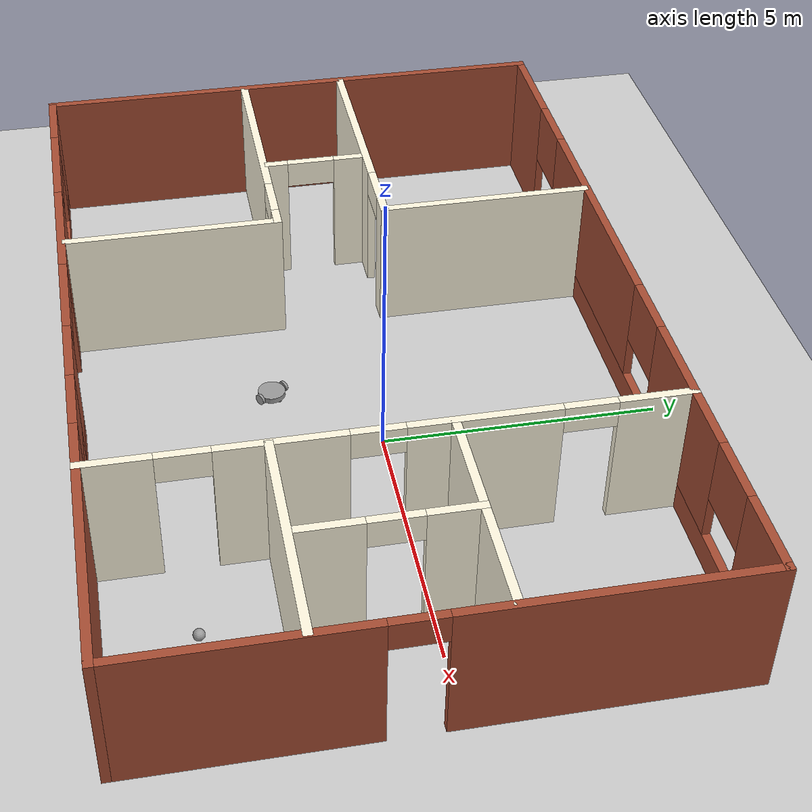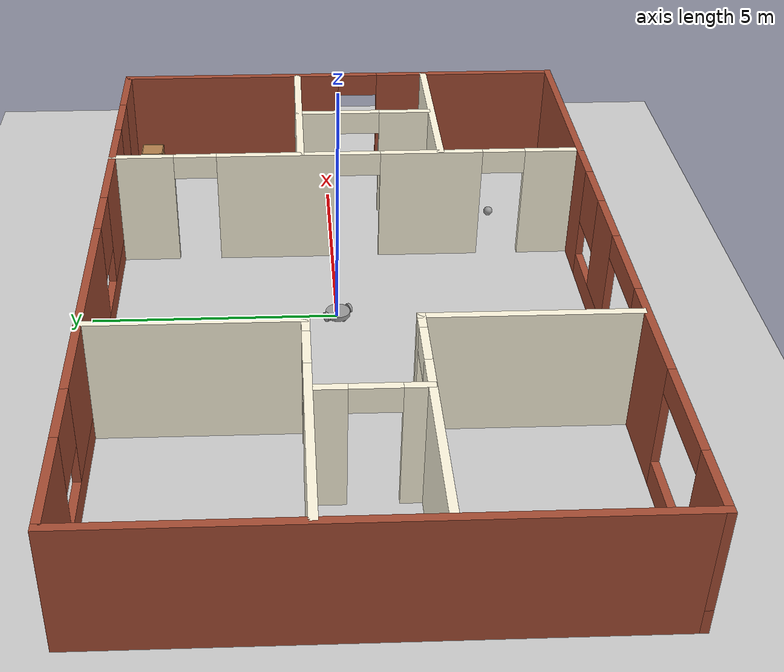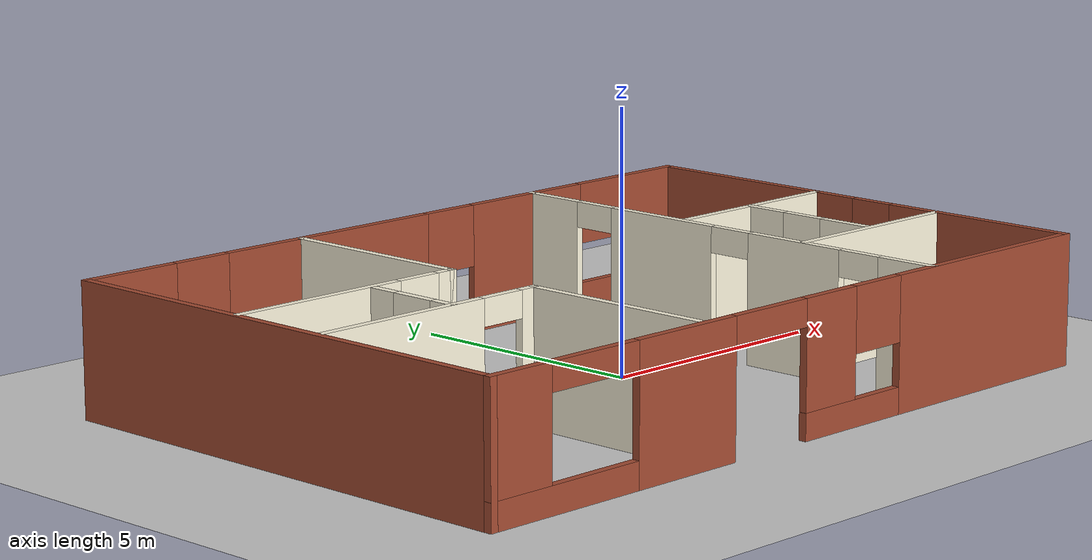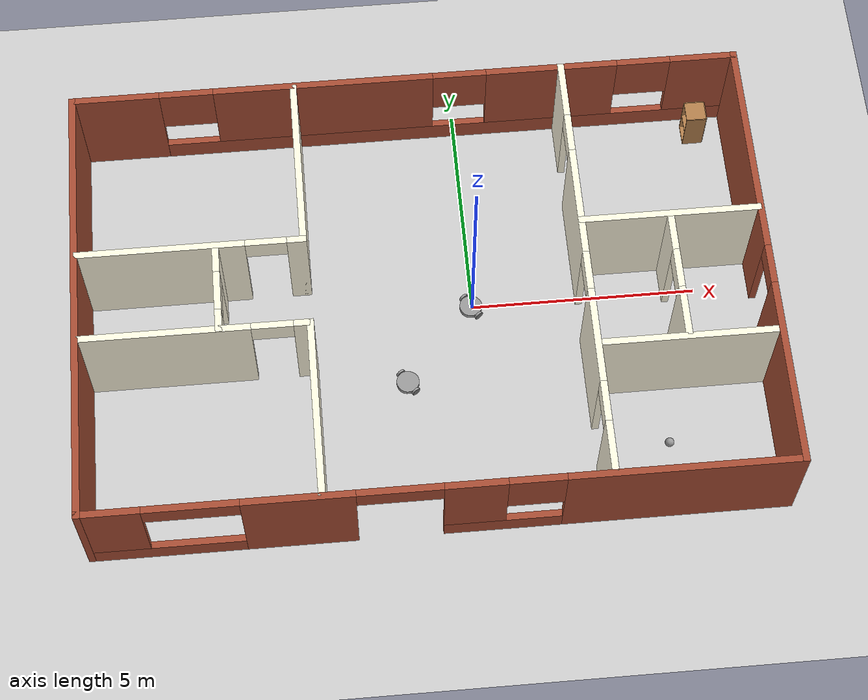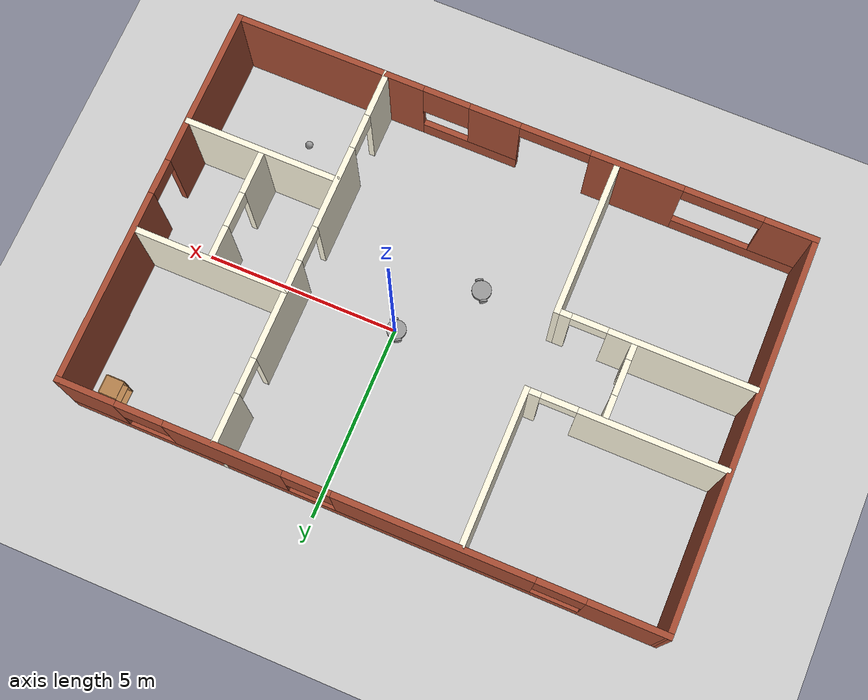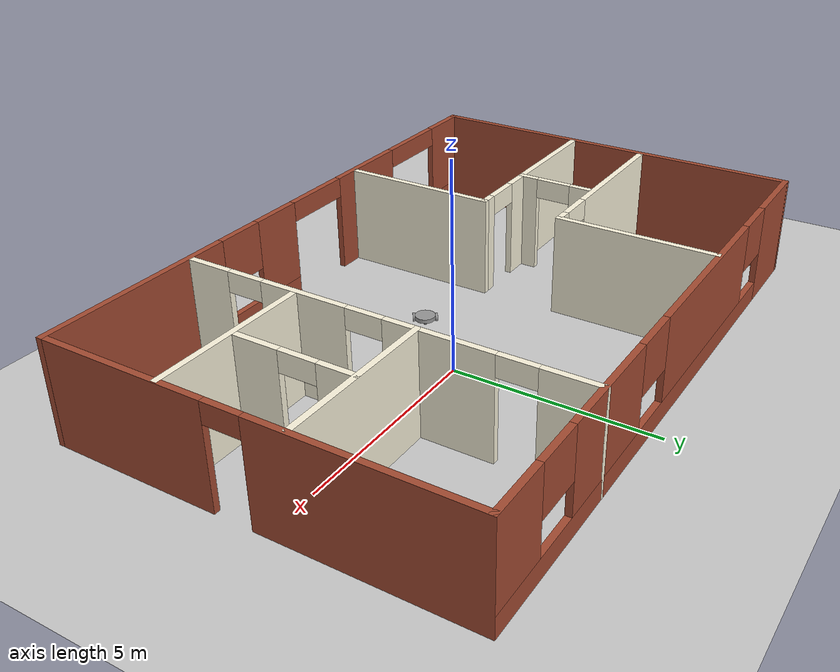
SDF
<sdf version="1.6">
 <world name="default">
  <plugin name="hello" filename="libhello.so"/>
  <light name="sun" type="directional">
   <pose>0 0 10 0 -0 0</pose>
   <diffuse>0.8 0.8 0.8 1</diffuse>
   <specular>0.2 0.2 0.2 1</specular>
   <attenuation>
    <range>1000</range>
    <constant>0.9</constant>
    <linear>0.01</linear>
    <quadratic>0.001</quadratic>
   </attenuation>
   <direction>-0.5 0.1 -0.9</direction>
  </light>
  <model name="ground_plane">
   <static>1</static>
   <link name="link">
    <collision name="collision">
     <geometry><plane><normal>0 0 1</normal><size>100 100</size></plane></geometry>
     <surface>
      <contact><collide_bitmask>65535</collide_bitmask></contact>
      <friction><ode><mu>100</mu><mu2>50</mu2></ode></friction>
     </surface>
    </collision>
    <visual name="visual">
     <cast_shadows>0</cast_shadows>
     <geometry><plane><normal>0 0 1</normal><size>100 100</size></plane></geometry>
     <material>
      <script><uri>file://media/materials/scripts/gazebo.material</uri><name>Gazebo/Grey</name></script>
     </material>
    </visual>
   </link>
  </model>
  <gravity>0 0 -9.8</gravity>
  <magnetic_field>6e-06 2.3e-05 -4.2e-05</magnetic_field>
  <atmosphere type="adiabatic"/>
  <physics name="default_physics" default="0" type="ode">
   <max_step_size>0.001</max_step_size>
   <real_time_factor>1</real_time_factor>
   <real_time_update_rate>1000</real_time_update_rate>
  </physics>
  <scene><ambient>0.4 0.4 0.4 1</ambient><background>0.7 0.7 0.7 1</background><shadows>1</shadows></scene>
  <spherical_coordinates>
   <surface_model>EARTH_WGS84</surface_model>
   <latitude_deg>0</latitude_deg>
   <longitude_deg>0</longitude_deg>
   <elevation>0</elevation>
   <heading_deg>0</heading_deg>
  </spherical_coordinates>
  <model name="MyHouse">
   <pose>-1.12525 -0.31003 0 0 -0 0</pose>
   <link name="Wall_0">
    <pose>0 4.925 0 0 -0 0</pose>
    <visual name="Wall_0_Visual_0">
     <pose>-6.49606 0 1.25 0 -0 0</pose>
     <geometry><box><size>2.00787 0.15 2.5</size></box></geometry>
     <material>
      <script><uri>file://media/materials/scripts/gazebo.material</uri><name>Gazebo/Bricks</name></script>
      <ambient>1 1 1 1</ambient>
     </material>
     <meta><layer>0</layer></meta>
    </visual>
    <collision name="Wall_0_Collision_0">
     <geometry><box><size>2.00787 0.15 2.5</size></box></geometry>
     <pose>-6.49606 0 1.25 0 -0 0</pose>
    </collision>
    <visual name="Wall_0_Visual_1">
     <pose>1.00394 0 0.25 0 -0 0</pose>
     <geometry><box><size>12.9921 0.15 0.5</size></box></geometry>
     <material>
      <script><uri>file://media/materials/scripts/gazebo.material</uri><name>Gazebo/Bricks</name></script>
      <ambient>1 1 1 1</ambient>
     </material>
     <meta><layer>0</layer></meta>
    </visual>
    <collision name="Wall_0_Collision_1">
     <geometry><box><size>12.9921 0.15 0.5</size></box></geometry>
     <pose>1.00394 0 0.25 0 -0 0</pose>
    </collision>
    <visual name="Wall_0_Visual_2">
     <pose>-1.83158 0 1.5 0 -0 0</pose>
     <geometry><box><size>4.9211 0.15 2</size></box></geometry>
     <material>
      <script><uri>file://media/materials/scripts/gazebo.material</uri><name>Gazebo/Bricks</name></script>
      <ambient>1 1 1 1</ambient>
     </material>
     <meta><layer>0</layer></meta>
    </visual>
    <collision name="Wall_0_Collision_2">
     <geometry><box><size>4.9211 0.15 2</size></box></geometry>
     <pose>-1.83158 0 1.5 0 -0 0</pose>
    </collision>
    <visual name="Wall_0_Visual_3">
     <pose>3.30452 0 1.5 0 -0 0</pose>
     <geometry><box><size>2.95109 0.15 2</size></box></geometry>
     <material>
      <script><uri>file://media/materials/scripts/gazebo.material</uri><name>Gazebo/Bricks</name></script>
      <ambient>1 1 1 1</ambient>
     </material>
     <meta><layer>0</layer></meta>
    </visual>
    <collision name="Wall_0_Collision_3">
     <geometry><box><size>2.95109 0.15 2</size></box></geometry>
     <pose>3.30452 0 1.5 0 -0 0</pose>
    </collision>
    <visual name="Wall_0_Visual_4">
     <pose>6.74003 0 1.5 0 -0 0</pose>
     <geometry><box><size>1.51993 0.15 2</size></box></geometry>
     <material>
      <script><uri>file://media/materials/scripts/gazebo.material</uri><name>Gazebo/Bricks</name></script>
      <ambient>1 1 1 1</ambient>
     </material>
     <meta><layer>0</layer></meta>
    </visual>
    <collision name="Wall_0_Collision_4">
     <geometry><box><size>1.51993 0.15 2</size></box></geometry>
     <pose>6.74003 0 1.5 0 -0 0</pose>
    </collision>
    <visual name="Wall_0_Visual_5">
     <pose>-4.89213 0 1.9 0 -0 0</pose>
     <geometry><box><size>1.2 0.15 1.2</size></box></geometry>
     <material>
      <script><uri>file://media/materials/scripts/gazebo.material</uri><name>Gazebo/Bricks</name></script>
      <ambient>1 1 1 1</ambient>
     </material>
     <meta><layer>0</layer></meta>
    </visual>
    <collision name="Wall_0_Collision_5">
     <geometry><box><size>1.2 0.15 1.2</size></box></geometry>
     <pose>-4.89213 0 1.9 0 -0 0</pose>
    </collision>
    <visual name="Wall_0_Visual_6">
     <pose>1.22898 0 1.9 0 -0 0</pose>
     <geometry><box><size>1.2 0.15 1.2</size></box></geometry>
     <material>
      <script><uri>file://media/materials/scripts/gazebo.material</uri><name>Gazebo/Bricks</name></script>
      <ambient>1 1 1 1</ambient>
     </material>
     <meta><layer>0</layer></meta>
    </visual>
    <collision name="Wall_0_Collision_6">
     <geometry><box><size>1.2 0.15 1.2</size></box></geometry>
     <pose>1.22898 0 1.9 0 -0 0</pose>
    </collision>
    <visual name="Wall_0_Visual_7">
     <pose>5.38007 0 1.9 0 -0 0</pose>
     <geometry><box><size>1.2 0.15 1.2</size></box></geometry>
     <material>
      <script><uri>file://media/materials/scripts/gazebo.material</uri><name>Gazebo/Bricks</name></script>
      <ambient>1 1 1 1</ambient>
     </material>
     <meta><layer>0</layer></meta>
    </visual>
    <collision name="Wall_0_Collision_7">
     <geometry><box><size>1.2 0.15 1.2</size></box></geometry>
     <pose>5.38007 0 1.9 0 -0 0</pose>
    </collision>
   </link>
   <link name="Wall_1">
    <pose>7.425 0 0 0 0 -1.5708</pose>
    <visual name="Wall_1_Visual_0">
     <pose>-2.51391 0 1.25 0 -0 0</pose>
     <geometry><box><size>4.97217 0.15 2.5</size></box></geometry>
     <material>
      <script><uri>file://media/materials/scripts/gazebo.material</uri><name>Gazebo/Bricks</name></script>
      <ambient>1 1 1 1</ambient>
     </material>
     <meta><layer>0</layer></meta>
    </visual>
    <collision name="Wall_1_Collision_0">
     <geometry><box><size>4.97217 0.15 2.5</size></box></geometry>
     <pose>-2.51391 0 1.25 0 -0 0</pose>
    </collision>
    <visual name="Wall_1_Visual_1">
     <pose>2.93609 0 1.25 0 -0 0</pose>
     <geometry><box><size>4.12783 0.15 2.5</size></box></geometry>
     <material>
      <script><uri>file://media/materials/scripts/gazebo.material</uri><name>Gazebo/Bricks</name></script>
      <ambient>1 1 1 1</ambient>
     </material>
     <meta><layer>0</layer></meta>
    </visual>
    <collision name="Wall_1_Collision_1">
     <geometry><box><size>4.12783 0.15 2.5</size></box></geometry>
     <pose>2.93609 0 1.25 0 -0 0</pose>
    </collision>
    <visual name="Wall_1_Visual_2">
     <pose>0.422172 0 2.25 0 -0 0</pose>
     <geometry><box><size>0.9 0.15 0.5</size></box></geometry>
     <material>
      <script><uri>file://media/materials/scripts/gazebo.material</uri><name>Gazebo/Bricks</name></script>
      <ambient>1 1 1 1</ambient>
     </material>
     <meta><layer>0</layer></meta>
    </visual>
    <collision name="Wall_1_Collision_2">
     <geometry><box><size>0.9 0.15 0.5</size></box></geometry>
     <pose>0.422172 0 2.25 0 -0 0</pose>
    </collision>
   </link>
   <link name="Wall_15">
    <pose>-4.39963 -0.049306 0 0 0 -1.5708</pose>
    <visual name="Wall_15_Visual_0">
     <pose>-0.714461 0 1.25 0 -0 0</pose>
     <geometry><box><size>0.571078 0.15 2.5</size></box></geometry>
     <material>
      <script><uri>file://media/materials/scripts/gazebo.material</uri><name>Gazebo/Grey</name></script>
      <ambient>1 0.972549 0.878431 1</ambient>
     </material>
     <meta><layer>0</layer></meta>
    </visual>
    <collision name="Wall_15_Collision_0">
     <geometry><box><size>0.571078 0.15 2.5</size></box></geometry>
     <pose>-0.714461 0 1.25 0 -0 0</pose>
    </collision>
    <visual name="Wall_15_Visual_1">
     <pose>0.735539 0 1.25 0 -0 0</pose>
     <geometry><box><size>0.528922 0.15 2.5</size></box></geometry>
     <material>
      <script><uri>file://media/materials/scripts/gazebo.material</uri><name>Gazebo/Grey</name></script>
      <ambient>1 0.972549 0.878431 1</ambient>
     </material>
     <meta><layer>0</layer></meta>
    </visual>
    <collision name="Wall_15_Collision_1">
     <geometry><box><size>0.528922 0.15 2.5</size></box></geometry>
     <pose>0.735539 0 1.25 0 -0 0</pose>
    </collision>
    <visual name="Wall_15_Visual_2">
     <pose>0.021078 0 2.25 0 -0 0</pose>
     <geometry><box><size>0.9 0.15 0.5</size></box></geometry>
     <material>
      <script><uri>file://media/materials/scripts/gazebo.material</uri><name>Gazebo/Grey</name></script>
      <ambient>1 0.972549 0.878431 1</ambient>
     </material>
     <meta><layer>0</layer></meta>
    </visual>
    <collision name="Wall_15_Collision_2">
     <geometry><box><size>0.9 0.15 0.5</size></box></geometry>
     <pose>0.021078 0 2.25 0 -0 0</pose>
    </collision>
   </link>
   <link name="Wall_17">
    <pose>3.51559 0 0 0 0 -1.5708</pose>
    <visual name="Wall_17_Visual_0">
     <pose>-4.32562 0 1.25 0 -0 0</pose>
     <geometry><box><size>1.34876 0.15 2.5</size></box></geometry>
     <material>
      <script><uri>file://media/materials/scripts/gazebo.material</uri><name>Gazebo/Grey</name></script>
      <ambient>1 0.972549 0.878431 1</ambient>
     </material>
     <meta><layer>0</layer></meta>
    </visual>
    <collision name="Wall_17_Collision_0">
     <geometry><box><size>1.34876 0.15 2.5</size></box></geometry>
     <pose>-4.32562 0 1.25 0 -0 0</pose>
    </collision>
    <visual name="Wall_17_Visual_1">
     <pose>-1.47748 0 1.25 0 -0 0</pose>
     <geometry><box><size>2.54752 0.15 2.5</size></box></geometry>
     <material>
      <script><uri>file://media/materials/scripts/gazebo.material</uri><name>Gazebo/Grey</name></script>
      <ambient>1 0.972549 0.878431 1</ambient>
     </material>
     <meta><layer>0</layer></meta>
    </visual>
    <collision name="Wall_17_Collision_1">
     <geometry><box><size>2.54752 0.15 2.5</size></box></geometry>
     <pose>-1.47748 0 1.25 0 -0 0</pose>
    </collision>
    <visual name="Wall_17_Visual_2">
     <pose>1.77655 0 1.25 0 -0 0</pose>
     <geometry><box><size>2.16055 0.15 2.5</size></box></geometry>
     <material>
      <script><uri>file://media/materials/scripts/gazebo.material</uri><name>Gazebo/Grey</name></script>
      <ambient>1 0.972549 0.878431 1</ambient>
     </material>
     <meta><layer>0</layer></meta>
    </visual>
    <collision name="Wall_17_Collision_2">
     <geometry><box><size>2.16055 0.15 2.5</size></box></geometry>
     <pose>1.77655 0 1.25 0 -0 0</pose>
    </collision>
    <visual name="Wall_17_Visual_3">
     <pose>4.37842 0 1.25 0 -0 0</pose>
     <geometry><box><size>1.24317 0.15 2.5</size></box></geometry>
     <material>
      <script><uri>file://media/materials/scripts/gazebo.material</uri><name>Gazebo/Grey</name></script>
      <ambient>1 0.972549 0.878431 1</ambient>
     </material>
     <meta><layer>0</layer></meta>
    </visual>
    <collision name="Wall_17_Collision_3">
     <geometry><box><size>1.24317 0.15 2.5</size></box></geometry>
     <pose>4.37842 0 1.25 0 -0 0</pose>
    </collision>
    <visual name="Wall_17_Visual_4">
     <pose>-3.20124 0 2.25 0 -0 0</pose>
     <geometry><box><size>0.9 0.15 0.5</size></box></geometry>
     <material>
      <script><uri>file://media/materials/scripts/gazebo.material</uri><name>Gazebo/Grey</name></script>
      <ambient>1 0.972549 0.878431 1</ambient>
     </material>
     <meta><layer>0</layer></meta>
    </visual>
    <collision name="Wall_17_Collision_4">
     <geometry><box><size>0.9 0.15 0.5</size></box></geometry>
     <pose>-3.20124 0 2.25 0 -0 0</pose>
    </collision>
    <visual name="Wall_17_Visual_5">
     <pose>0.246278 0 2.25 0 -0 0</pose>
     <geometry><box><size>0.9 0.15 0.5</size></box></geometry>
     <material>
      <script><uri>file://media/materials/scripts/gazebo.material</uri><name>Gazebo/Grey</name></script>
      <ambient>1 0.972549 0.878431 1</ambient>
     </material>
     <meta><layer>0</layer></meta>
    </visual>
    <collision name="Wall_17_Collision_5">
     <geometry><box><size>0.9 0.15 0.5</size></box></geometry>
     <pose>0.246278 0 2.25 0 -0 0</pose>
    </collision>
    <visual name="Wall_17_Visual_6">
     <pose>3.30683 0 2.25 0 -0 0</pose>
     <geometry><box><size>0.9 0.15 0.5</size></box></geometry>
     <material>
      <script><uri>file://media/materials/scripts/gazebo.material</uri><name>Gazebo/Grey</name></script>
      <ambient>1 0.972549 0.878431 1</ambient>
     </material>
     <meta><layer>0</layer></meta>
    </visual>
    <collision name="Wall_17_Collision_6">
     <geometry><box><size>0.9 0.15 0.5</size></box></geometry>
     <pose>3.30683 0 2.25 0 -0 0</pose>
    </collision>
   </link>
   <link name="Wall_2">
    <pose>0 -4.925 0 0 -0 3.14159</pose>
    <visual name="Wall_2_Visual_0">
     <pose>-5.01628 0 1.25 0 -0 0</pose>
     <geometry><box><size>4.96745 0.15 2.5</size></box></geometry>
     <material>
      <script><uri>file://media/materials/scripts/gazebo.material</uri><name>Gazebo/Bricks</name></script>
      <ambient>1 1 1 1</ambient>
     </material>
     <meta><layer>0</layer></meta>
    </visual>
    <collision name="Wall_2_Collision_0">
     <geometry><box><size>4.96745 0.15 2.5</size></box></geometry>
     <pose>-5.01628 0 1.25 0 -0 0</pose>
    </collision>
    <visual name="Wall_2_Visual_1">
     <pose>2.96025 0 1.25 0 -0 0</pose>
     <geometry><box><size>2.35701 0.15 2.5</size></box></geometry>
     <material>
      <script><uri>file://media/materials/scripts/gazebo.material</uri><name>Gazebo/Bricks</name></script>
      <ambient>1 1 1 1</ambient>
     </material>
     <meta><layer>0</layer></meta>
    </visual>
    <collision name="Wall_2_Collision_1">
     <geometry><box><size>2.35701 0.15 2.5</size></box></geometry>
     <pose>2.96025 0 1.25 0 -0 0</pose>
    </collision>
    <visual name="Wall_2_Visual_2">
     <pose>-1.2754 0 0.25 0 -0 0</pose>
     <geometry><box><size>2.5143 0.15 0.5</size></box></geometry>
     <material>
      <script><uri>file://media/materials/scripts/gazebo.material</uri><name>Gazebo/Bricks</name></script>
      <ambient>1 1 1 1</ambient>
     </material>
     <meta><layer>0</layer></meta>
    </visual>
    <collision name="Wall_2_Collision_2">
     <geometry><box><size>2.5143 0.15 0.5</size></box></geometry>
     <pose>-1.2754 0 0.25 0 -0 0</pose>
    </collision>
    <visual name="Wall_2_Visual_3">
     <pose>5.81938 0 0.25 0 -0 0</pose>
     <geometry><box><size>3.36124 0.15 0.5</size></box></geometry>
     <material>
      <script><uri>file://media/materials/scripts/gazebo.material</uri><name>Gazebo/Bricks</name></script>
      <ambient>1 1 1 1</ambient>
     </material>
     <meta><layer>0</layer></meta>
    </visual>
    <collision name="Wall_2_Collision_3">
     <geometry><box><size>3.36124 0.15 0.5</size></box></geometry>
     <pose>5.81938 0 0.25 0 -0 0</pose>
    </collision>
    <visual name="Wall_2_Visual_4">
     <pose>6.81938 0 1.5 0 -0 0</pose>
     <geometry><box><size>1.36125 0.15 2</size></box></geometry>
     <material>
      <script><uri>file://media/materials/scripts/gazebo.material</uri><name>Gazebo/Bricks</name></script>
      <ambient>1 1 1 1</ambient>
     </material>
     <meta><layer>0</layer></meta>
    </visual>
    <collision name="Wall_2_Collision_4">
     <geometry><box><size>1.36125 0.15 2</size></box></geometry>
     <pose>6.81938 0 1.5 0 -0 0</pose>
    </collision>
    <visual name="Wall_2_Visual_5">
     <pose>-0.6754 0 1.5 0 -0 0</pose>
     <geometry><box><size>1.3143 0.15 2</size></box></geometry>
     <material>
      <script><uri>file://media/materials/scripts/gazebo.material</uri><name>Gazebo/Bricks</name></script>
      <ambient>1 1 1 1</ambient>
     </material>
     <meta><layer>0</layer></meta>
    </visual>
    <collision name="Wall_2_Collision_5">
     <geometry><box><size>1.3143 0.15 2</size></box></geometry>
     <pose>-0.6754 0 1.5 0 -0 0</pose>
    </collision>
    <visual name="Wall_2_Visual_6">
     <pose>-0.6754 0 1.5 0 -0 0</pose>
     <geometry><box><size>1.3143 0.15 2</size></box></geometry>
     <material>
      <script><uri>file://media/materials/scripts/gazebo.material</uri><name>Gazebo/Bricks</name></script>
      <ambient>1 1 1 1</ambient>
     </material>
     <meta><layer>0</layer></meta>
    </visual>
    <collision name="Wall_2_Collision_6">
     <geometry><box><size>1.3143 0.15 2</size></box></geometry>
     <pose>-0.6754 0 1.5 0 -0 0</pose>
    </collision>
    <visual name="Wall_2_Visual_7">
     <pose>-1.93255 0 1.9 0 -0 0</pose>
     <geometry><box><size>1.2 0.15 1.2</size></box></geometry>
     <material>
      <script><uri>file://media/materials/scripts/gazebo.material</uri><name>Gazebo/Bricks</name></script>
      <ambient>1 1 1 1</ambient>
     </material>
     <meta><layer>0</layer></meta>
    </visual>
    <collision name="Wall_2_Collision_7">
     <geometry><box><size>1.2 0.15 1.2</size></box></geometry>
     <pose>-1.93255 0 1.9 0 -0 0</pose>
    </collision>
    <visual name="Wall_2_Visual_8">
     <pose>5.13875 0 2.25 0 -0 0</pose>
     <geometry><box><size>2 0.15 0.5</size></box></geometry>
     <material>
      <script><uri>file://media/materials/scripts/gazebo.material</uri><name>Gazebo/Bricks</name></script>
      <ambient>1 1 1 1</ambient>
     </material>
     <meta><layer>0</layer></meta>
    </visual>
    <collision name="Wall_2_Collision_8">
     <geometry><box><size>2 0.15 0.5</size></box></geometry>
     <pose>5.13875 0 2.25 0 -0 0</pose>
    </collision>
    <visual name="Wall_2_Visual_9">
     <pose>0.88175 0 2.25 0 -0 0</pose>
     <geometry><box><size>1.8 0.15 0.5</size></box></geometry>
     <material>
      <script><uri>file://media/materials/scripts/gazebo.material</uri><name>Gazebo/Bricks</name></script>
      <ambient>1 1 1 1</ambient>
     </material>
     <meta><layer>0</layer></meta>
    </visual>
    <collision name="Wall_2_Collision_9">
     <geometry><box><size>1.8 0.15 0.5</size></box></geometry>
     <pose>0.88175 0 2.25 0 -0 0</pose>
    </collision>
    <visual name="Wall_2_Visual_10">
     <pose>0.88175 0 2.25 0 -0 0</pose>
     <geometry><box><size>1.8 0.15 0.5</size></box></geometry>
     <material>
      <script><uri>file://media/materials/scripts/gazebo.material</uri><name>Gazebo/Bricks</name></script>
      <ambient>1 1 1 1</ambient>
     </material>
     <meta><layer>0</layer></meta>
    </visual>
    <collision name="Wall_2_Collision_10">
     <geometry><box><size>1.8 0.15 0.5</size></box></geometry>
     <pose>0.88175 0 2.25 0 -0 0</pose>
    </collision>
   </link>
   <link name="Wall_21">
    <collision name="Wall_21_Collision">
     <geometry><box><size>4 0.15 2.5</size></box></geometry>
     <pose>0 0 1.25 0 -0 0</pose>
    </collision>
    <visual name="Wall_21_Visual">
     <pose>0 0 1.25 0 -0 0</pose>
     <geometry><box><size>4 0.15 2.5</size></box></geometry>
     <material>
      <script><uri>file://media/materials/scripts/gazebo.material</uri><name>Gazebo/Grey</name></script>
      <ambient>1 0.972549 0.878431 1</ambient>
     </material>
     <meta><layer>0</layer></meta>
    </visual>
    <pose>5.4406 0.984979 0 0 -0 0</pose>
   </link>
   <link name="Wall_24">
    <collision name="Wall_24_Collision">
     <geometry><box><size>4 0.15 2.5</size></box></geometry>
     <pose>0 0 1.25 0 -0 0</pose>
    </collision>
    <visual name="Wall_24_Visual">
     <pose>0 0 1.25 0 -0 0</pose>
     <geometry><box><size>4 0.15 2.5</size></box></geometry>
     <material>
      <script><uri>file://media/materials/scripts/gazebo.material</uri><name>Gazebo/Grey</name></script>
      <ambient>1 0.972549 0.878431 1</ambient>
     </material>
     <meta><layer>0</layer></meta>
    </visual>
    <pose>5.47577 -1.97004 0 0 -0 0</pose>
   </link>
   <link name="Wall_26">
    <pose>5.45043 -0.440021 0 0 0 -1.5708</pose>
    <visual name="Wall_26_Visual_0">
     <pose>-1.0191 0 1.25 0 -0 0</pose>
     <geometry><box><size>0.961793 0.15 2.5</size></box></geometry>
     <material>
      <script><uri>file://media/materials/scripts/gazebo.material</uri><name>Gazebo/Grey</name></script>
      <ambient>1 0.972549 0.878431 1</ambient>
     </material>
     <meta><layer>0</layer></meta>
    </visual>
    <collision name="Wall_26_Collision_0">
     <geometry><box><size>0.961793 0.15 2.5</size></box></geometry>
     <pose>-1.0191 0 1.25 0 -0 0</pose>
    </collision>
    <visual name="Wall_26_Visual_1">
     <pose>0.930896 0 1.25 0 -0 0</pose>
     <geometry><box><size>1.13821 0.15 2.5</size></box></geometry>
     <material>
      <script><uri>file://media/materials/scripts/gazebo.material</uri><name>Gazebo/Grey</name></script>
      <ambient>1 0.972549 0.878431 1</ambient>
     </material>
     <meta><layer>0</layer></meta>
    </visual>
    <collision name="Wall_26_Collision_1">
     <geometry><box><size>1.13821 0.15 2.5</size></box></geometry>
     <pose>0.930896 0 1.25 0 -0 0</pose>
    </collision>
    <visual name="Wall_26_Visual_2">
     <pose>-0.088207 0 2.25 0 -0 0</pose>
     <geometry><box><size>0.9 0.15 0.5</size></box></geometry>
     <material>
      <script><uri>file://media/materials/scripts/gazebo.material</uri><name>Gazebo/Grey</name></script>
      <ambient>1 0.972549 0.878431 1</ambient>
     </material>
     <meta><layer>0</layer></meta>
    </visual>
    <collision name="Wall_26_Collision_2">
     <geometry><box><size>0.9 0.15 0.5</size></box></geometry>
     <pose>-0.088207 0 2.25 0 -0 0</pose>
    </collision>
   </link>
   <link name="Wall_3">
    <collision name="Wall_3_Collision">
     <geometry><box><size>10 0.15 2.5</size></box></geometry>
     <pose>0 0 1.25 0 -0 0</pose>
    </collision>
    <visual name="Wall_3_Visual">
     <pose>0 0 1.25 0 -0 0</pose>
     <geometry><box><size>10 0.15 2.5</size></box></geometry>
     <material>
      <script><uri>file://media/materials/scripts/gazebo.material</uri><name>Gazebo/Bricks</name></script>
      <ambient>1 1 1 1</ambient>
     </material>
     <meta><layer>0</layer></meta>
    </visual>
    <pose>-7.425 0 0 0 -0 1.5708</pose>
   </link>
   <link name="Wall_5">
    <pose>-4.92964 1.02016 0 0 -0 0</pose>
    <visual name="Wall_5_Visual_0">
     <pose>-0.664721 0 1.25 0 -0 0</pose>
     <geometry><box><size>3.67056 0.15 2.5</size></box></geometry>
     <material>
      <script><uri>file://media/materials/scripts/gazebo.material</uri><name>Gazebo/Grey</name></script>
      <ambient>1 0.972549 0.878431 1</ambient>
     </material>
     <meta><layer>0</layer></meta>
    </visual>
    <collision name="Wall_5_Collision_0">
     <geometry><box><size>3.67056 0.15 2.5</size></box></geometry>
     <pose>-0.664721 0 1.25 0 -0 0</pose>
    </collision>
    <visual name="Wall_5_Visual_1">
     <pose>2.28528 0 1.25 0 -0 0</pose>
     <geometry><box><size>0.429442 0.15 2.5</size></box></geometry>
     <material>
      <script><uri>file://media/materials/scripts/gazebo.material</uri><name>Gazebo/Grey</name></script>
      <ambient>1 0.972549 0.878431 1</ambient>
     </material>
     <meta><layer>0</layer></meta>
    </visual>
    <collision name="Wall_5_Collision_1">
     <geometry><box><size>0.429442 0.15 2.5</size></box></geometry>
     <pose>2.28528 0 1.25 0 -0 0</pose>
    </collision>
    <visual name="Wall_5_Visual_2">
     <pose>1.62056 0 2.25 0 -0 0</pose>
     <geometry><box><size>0.9 0.15 0.5</size></box></geometry>
     <material>
      <script><uri>file://media/materials/scripts/gazebo.material</uri><name>Gazebo/Grey</name></script>
      <ambient>1 0.972549 0.878431 1</ambient>
     </material>
     <meta><layer>0</layer></meta>
    </visual>
    <collision name="Wall_5_Collision_2">
     <geometry><box><size>0.9 0.15 0.5</size></box></geometry>
     <pose>1.62056 0 2.25 0 -0 0</pose>
    </collision>
   </link>
   <link name="Wall_6">
    <collision name="Wall_6_Collision">
     <geometry><box><size>4 0.15 2.5</size></box></geometry>
     <pose>0 0 1.25 0 -0 0</pose>
    </collision>
    <visual name="Wall_6_Visual">
     <pose>0 0 1.25 0 -0 0</pose>
     <geometry><box><size>4 0.15 2.5</size></box></geometry>
     <material>
      <script><uri>file://media/materials/scripts/gazebo.material</uri><name>Gazebo/Grey</name></script>
      <ambient>1 0.972549 0.878431 1</ambient>
     </material>
     <meta><layer>0</layer></meta>
    </visual>
    <pose>-2.50464 2.94516 0 0 -0 1.5708</pose>
   </link>
   <link name="Wall_8">
    <pose>-4.89446 -0.985032 0 0 -0 0</pose>
    <visual name="Wall_8_Visual_0">
     <pose>-0.664721 0 1.25 0 -0 0</pose>
     <geometry><box><size>3.67056 0.15 2.5</size></box></geometry>
     <material>
      <script><uri>file://media/materials/scripts/gazebo.material</uri><name>Gazebo/Grey</name></script>
      <ambient>1 0.972549 0.878431 1</ambient>
     </material>
     <meta><layer>0</layer></meta>
    </visual>
    <collision name="Wall_8_Collision_0">
     <geometry><box><size>3.67056 0.15 2.5</size></box></geometry>
     <pose>-0.664721 0 1.25 0 -0 0</pose>
    </collision>
    <visual name="Wall_8_Visual_1">
     <pose>2.28528 0 1.25 0 -0 0</pose>
     <geometry><box><size>0.429443 0.15 2.5</size></box></geometry>
     <material>
      <script><uri>file://media/materials/scripts/gazebo.material</uri><name>Gazebo/Grey</name></script>
      <ambient>1 0.972549 0.878431 1</ambient>
     </material>
     <meta><layer>0</layer></meta>
    </visual>
    <collision name="Wall_8_Collision_1">
     <geometry><box><size>0.429443 0.15 2.5</size></box></geometry>
     <pose>2.28528 0 1.25 0 -0 0</pose>
    </collision>
    <visual name="Wall_8_Visual_2">
     <pose>1.62056 0 2.25 0 -0 0</pose>
     <geometry><box><size>0.9 0.15 0.5</size></box></geometry>
     <material>
      <script><uri>file://media/materials/scripts/gazebo.material</uri><name>Gazebo/Grey</name></script>
      <ambient>1 0.972549 0.878431 1</ambient>
     </material>
     <meta><layer>0</layer></meta>
    </visual>
    <collision name="Wall_8_Collision_2">
     <geometry><box><size>0.9 0.15 0.5</size></box></geometry>
     <pose>1.62056 0 2.25 0 -0 0</pose>
    </collision>
   </link>
   <link name="Wall_9">
    <collision name="Wall_9_Collision">
     <geometry><box><size>4 0.15 2.5</size></box></geometry>
     <pose>0 0 1.25 0 -0 0</pose>
    </collision>
    <visual name="Wall_9_Visual">
     <pose>0 0 1.25 0 -0 0</pose>
     <geometry><box><size>4 0.15 2.5</size></box></geometry>
     <material>
      <script><uri>file://media/materials/scripts/gazebo.material</uri><name>Gazebo/Grey</name></script>
      <ambient>1 0.972549 0.878431 1</ambient>
     </material>
     <meta><layer>0</layer></meta>
    </visual>
    <pose>-2.46946 -2.91003 0 0 0 -1.5708</pose>
   </link>
   <static>1</static>
  </model>
  <model name="robot_1">
   <link name="link_0">
    <pose>0.004 1e-06 0.02 0 -0 0</pose>
    <inertial>
     <mass>1</mass>
     <inertia><ixx>0.145833</ixx><ixy>0</ixy><ixz>0</ixz><iyy>0.145833</iyy><iyz>0</iyz><izz>0.125</izz></inertia>
    </inertial>
    <visual name="visual">
     <geometry><cylinder><radius>0.25</radius><length>0.1</length></cylinder></geometry>
     <material>
      <lighting>1</lighting>
      <script><uri>file://media/materials/scripts/gazebo.material</uri><name>Gazebo/Grey</name></script>
      <shader type="pixel"><normal_map>__default__</normal_map></shader>
      <ambient>0.3 0.3 0.3 1</ambient>
      <diffuse>0.7 0.7 0.7 1</diffuse>
      <specular>0.01 0.01 0.01 1</specular>
      <emissive>0 0 0 1</emissive>
     </material>
    </visual>
    <collision name="collision">
     <geometry><cylinder><radius>0.25</radius><length>0.1</length></cylinder></geometry>
     <surface>
      <friction>
       <ode><mu>1</mu><mu2>1</mu2><fdir1>0 0 0</fdir1><slip1>0</slip1><slip2>0</slip2></ode>
       <torsional>
        <coefficient>1</coefficient>
        <patch_radius>0</patch_radius>
        <surface_radius>0</surface_radius>
        <use_patch_radius>1</use_patch_radius>
        <ode><slip>0</slip></ode>
       </torsional>
      </friction>
      <bounce><restitution_coefficient>0</restitution_coefficient><threshold>1e+06</threshold></bounce>
      <contact>
       <collide_without_contact>0</collide_without_contact>
       <collide_without_contact_bitmask>1</collide_without_contact_bitmask>
       <collide_bitmask>1</collide_bitmask>
       <ode>
        <soft_cfm>0</soft_cfm>
        <soft_erp>0.2</soft_erp>
        <kp>1e+13</kp>
        <kd>1</kd>
        <max_vel>0.01</max_vel>
        <min_depth>0</min_depth>
       </ode>
       <bullet>
        <split_impulse>1</split_impulse>
        <split_impulse_penetration_threshold>-0.01</split_impulse_penetration_threshold>
        <soft_cfm>0</soft_cfm>
        <soft_erp>0.2</soft_erp>
        <kp>1e+13</kp>
        <kd>1</kd>
       </bullet>
      </contact>
     </surface>
    </collision>
   </link>
   <link name="link_1">
    <pose>-0.016 -0.275013 0.02 1.5707 -0 0</pose>
    <inertial>
     <mass>1</mass>
     <inertia><ixx>0.145833</ixx><ixy>0</ixy><ixz>0</ixz><iyy>0.145833</iyy><iyz>0</iyz><izz>0.125</izz></inertia>
    </inertial>
    <visual name="visual">
     <geometry><cylinder><radius>0.1</radius><length>0.05</length></cylinder></geometry>
     <material>
      <lighting>1</lighting>
      <script><uri>file://media/materials/scripts/gazebo.material</uri><name>Gazebo/Grey</name></script>
      <shader type="pixel"><normal_map>__default__</normal_map></shader>
      <ambient>0.3 0.3 0.3 1</ambient>
      <diffuse>0.7 0.7 0.7 1</diffuse>
      <specular>0.01 0.01 0.01 1</specular>
      <emissive>0 0 0 1</emissive>
     </material>
    </visual>
    <collision name="collision">
     <geometry><cylinder><radius>0.1</radius><length>0.05</length></cylinder></geometry>
     <surface>
      <friction>
       <ode><mu>1</mu><mu2>1</mu2><fdir1>0 0 0</fdir1><slip1>0</slip1><slip2>0</slip2></ode>
       <torsional>
        <coefficient>1</coefficient>
        <patch_radius>0</patch_radius>
        <surface_radius>0</surface_radius>
        <use_patch_radius>1</use_patch_radius>
        <ode><slip>0</slip></ode>
       </torsional>
      </friction>
      <bounce><restitution_coefficient>0</restitution_coefficient><threshold>1e+06</threshold></bounce>
      <contact>
       <collide_without_contact>0</collide_without_contact>
       <collide_without_contact_bitmask>1</collide_without_contact_bitmask>
       <collide_bitmask>1</collide_bitmask>
       <ode>
        <soft_cfm>0</soft_cfm>
        <soft_erp>0.2</soft_erp>
        <kp>1e+13</kp>
        <kd>1</kd>
        <max_vel>0.01</max_vel>
        <min_depth>0</min_depth>
       </ode>
       <bullet>
        <split_impulse>1</split_impulse>
        <split_impulse_penetration_threshold>-0.01</split_impulse_penetration_threshold>
        <soft_cfm>0</soft_cfm>
        <soft_erp>0.2</soft_erp>
        <kp>1e+13</kp>
        <kd>1</kd>
       </bullet>
      </contact>
     </surface>
    </collision>
   </link>
   <link name="link_1_clone">
    <pose>0.004 0.27501 0.02 1.5707 -0 0</pose>
    <inertial>
     <mass>1</mass>
     <inertia><ixx>0.145833</ixx><ixy>0</ixy><ixz>0</ixz><iyy>0.145833</iyy><iyz>0</iyz><izz>0.125</izz></inertia>
    </inertial>
    <visual name="visual">
     <geometry><cylinder><radius>0.1</radius><length>0.05</length></cylinder></geometry>
     <material>
      <lighting>1</lighting>
      <script><uri>file://media/materials/scripts/gazebo.material</uri><name>Gazebo/Grey</name></script>
      <shader type="pixel"><normal_map>__default__</normal_map></shader>
      <ambient>0.3 0.3 0.3 1</ambient>
      <diffuse>0.7 0.7 0.7 1</diffuse>
      <specular>0.01 0.01 0.01 1</specular>
      <emissive>0 0 0 1</emissive>
     </material>
    </visual>
    <collision name="collision">
     <geometry><cylinder><radius>0.1</radius><length>0.05</length></cylinder></geometry>
     <surface>
      <friction>
       <ode><mu>1</mu><mu2>1</mu2><fdir1>0 0 0</fdir1><slip1>0</slip1><slip2>0</slip2></ode>
       <torsional>
        <coefficient>1</coefficient>
        <patch_radius>0</patch_radius>
        <surface_radius>0</surface_radius>
        <use_patch_radius>1</use_patch_radius>
        <ode><slip>0</slip></ode>
       </torsional>
      </friction>
      <bounce><restitution_coefficient>0</restitution_coefficient><threshold>1e+06</threshold></bounce>
      <contact>
       <collide_without_contact>0</collide_without_contact>
       <collide_without_contact_bitmask>1</collide_without_contact_bitmask>
       <collide_bitmask>1</collide_bitmask>
       <ode>
        <soft_cfm>0</soft_cfm>
        <soft_erp>0.2</soft_erp>
        <kp>1e+13</kp>
        <kd>1</kd>
        <max_vel>0.01</max_vel>
        <min_depth>0</min_depth>
       </ode>
       <bullet>
        <split_impulse>1</split_impulse>
        <split_impulse_penetration_threshold>-0.01</split_impulse_penetration_threshold>
        <soft_cfm>0</soft_cfm>
        <soft_erp>0.2</soft_erp>
        <kp>1e+13</kp>
        <kd>1</kd>
       </bullet>
      </contact>
     </surface>
    </collision>
   </link>
   <link name="link_2">
    <pose>-0.196 1e-06 -0.03 0 -0 0</pose>
    <inertial>
     <mass>1</mass>
     <inertia><ixx>0.1</ixx><ixy>0</ixy><ixz>0</ixz><iyy>0.1</iyy><iyz>0</iyz><izz>0.1</izz></inertia>
    </inertial>
    <visual name="visual">
     <geometry><sphere><radius>0.05</radius></sphere></geometry>
     <material>
      <lighting>1</lighting>
      <script><uri>file://media/materials/scripts/gazebo.material</uri><name>Gazebo/Grey</name></script>
      <shader type="pixel"><normal_map>__default__</normal_map></shader>
      <ambient>0.3 0.3 0.3 1</ambient>
      <diffuse>0.7 0.7 0.7 1</diffuse>
      <specular>0.01 0.01 0.01 1</specular>
      <emissive>0 0 0 1</emissive>
     </material>
    </visual>
    <collision name="collision">
     <geometry><sphere><radius>0.05</radius></sphere></geometry>
     <surface>
      <friction>
       <ode><mu>1</mu><mu2>1</mu2><fdir1>0 0 0</fdir1><slip1>0</slip1><slip2>0</slip2></ode>
       <torsional>
        <coefficient>1</coefficient>
        <patch_radius>0</patch_radius>
        <surface_radius>0</surface_radius>
        <use_patch_radius>1</use_patch_radius>
        <ode><slip>0</slip></ode>
       </torsional>
      </friction>
      <bounce><restitution_coefficient>0</restitution_coefficient><threshold>1e+06</threshold></bounce>
      <contact>
       <collide_without_contact>0</collide_without_contact>
       <collide_without_contact_bitmask>1</collide_without_contact_bitmask>
       <collide_bitmask>1</collide_bitmask>
       <ode>
        <soft_cfm>0</soft_cfm>
        <soft_erp>0.2</soft_erp>
        <kp>1e+13</kp>
        <kd>1</kd>
        <max_vel>0.01</max_vel>
        <min_depth>0</min_depth>
       </ode>
       <bullet>
        <split_impulse>1</split_impulse>
        <split_impulse_penetration_threshold>-0.01</split_impulse_penetration_threshold>
        <soft_cfm>0</soft_cfm>
        <soft_erp>0.2</soft_erp>
        <kp>1e+13</kp>
        <kd>1</kd>
       </bullet>
      </contact>
     </surface>
    </collision>
   </link>
   <link name="link_2_clone">
    <pose>0.204 1e-06 -0.03 0 -0 0</pose>
    <inertial>
     <mass>1</mass>
     <inertia><ixx>0.1</ixx><ixy>0</ixy><ixz>0</ixz><iyy>0.1</iyy><iyz>0</iyz><izz>0.1</izz></inertia>
    </inertial>
    <visual name="visual">
     <geometry><sphere><radius>0.05</radius></sphere></geometry>
     <material>
      <lighting>1</lighting>
      <script><uri>file://media/materials/scripts/gazebo.material</uri><name>Gazebo/Grey</name></script>
      <shader type="pixel"><normal_map>__default__</normal_map></shader>
      <ambient>0.3 0.3 0.3 1</ambient>
      <diffuse>0.7 0.7 0.7 1</diffuse>
      <specular>0.01 0.01 0.01 1</specular>
      <emissive>0 0 0 1</emissive>
     </material>
    </visual>
    <collision name="collision">
     <geometry><sphere><radius>0.05</radius></sphere></geometry>
     <surface>
      <friction>
       <ode><mu>1</mu><mu2>1</mu2><fdir1>0 0 0</fdir1><slip1>0</slip1><slip2>0</slip2></ode>
       <torsional>
        <coefficient>1</coefficient>
        <patch_radius>0</patch_radius>
        <surface_radius>0</surface_radius>
        <use_patch_radius>1</use_patch_radius>
        <ode><slip>0</slip></ode>
       </torsional>
      </friction>
      <bounce><restitution_coefficient>0</restitution_coefficient><threshold>1e+06</threshold></bounce>
      <contact>
       <collide_without_contact>0</collide_without_contact>
       <collide_without_contact_bitmask>1</collide_without_contact_bitmask>
       <collide_bitmask>1</collide_bitmask>
       <ode>
        <soft_cfm>0</soft_cfm>
        <soft_erp>0.2</soft_erp>
        <kp>1e+13</kp>
        <kd>1</kd>
        <max_vel>0.01</max_vel>
        <min_depth>0</min_depth>
       </ode>
       <bullet>
        <split_impulse>1</split_impulse>
        <split_impulse_penetration_threshold>-0.01</split_impulse_penetration_threshold>
        <soft_cfm>0</soft_cfm>
        <soft_erp>0.2</soft_erp>
        <kp>1e+13</kp>
        <kd>1</kd>
       </bullet>
      </contact>
     </surface>
    </collision>
   </link>
   <joint name="link_0_JOINT_0" type="revolute">
    <parent>link_0</parent>
    <child>link_1_clone</child>
    <axis>
     <xyz>0 0 1</xyz>
     <use_parent_model_frame>0</use_parent_model_frame>
     <limit>
      <lower>-1.79769e+308</lower>
      <upper>1.79769e+308</upper>
      <effort>-1</effort>
      <velocity>-1</velocity>
     </limit>
     <dynamics>
      <spring_reference>0</spring_reference>
      <spring_stiffness>0</spring_stiffness>
      <damping>0</damping>
     </dynamics>
    </axis>
    <physics>
     <ode><limit><cfm>0</cfm><erp>0.2</erp></limit><suspension><cfm>0</cfm><erp>0.2</erp></suspension></ode>
    </physics>
   </joint>
   <joint name="link_0_JOINT_1" type="revolute">
    <parent>link_0</parent>
    <child>link_1</child>
    <axis>
     <xyz>0 0 1</xyz>
     <use_parent_model_frame>0</use_parent_model_frame>
     <limit>
      <lower>-1.79769e+308</lower>
      <upper>1.79769e+308</upper>
      <effort>-1</effort>
      <velocity>-1</velocity>
     </limit>
     <dynamics>
      <spring_reference>0</spring_reference>
      <spring_stiffness>0</spring_stiffness>
      <damping>0</damping>
     </dynamics>
    </axis>
    <physics>
     <ode><limit><cfm>0</cfm><erp>0.2</erp></limit><suspension><cfm>0</cfm><erp>0.2</erp></suspension></ode>
    </physics>
   </joint>
   <joint name="link_0_JOINT_2" type="ball">
    <parent>link_0</parent>
    <child>link_2_clone</child>
    <physics>
     <ode><limit><cfm>0</cfm><erp>0.2</erp></limit><suspension><cfm>0</cfm><erp>0.2</erp></suspension></ode>
    </physics>
   </joint>
   <joint name="link_0_JOINT_3" type="ball">
    <parent>link_0</parent>
    <child>link_2</child>
    <physics>
     <ode><limit><cfm>0</cfm><erp>0.2</erp></limit><suspension><cfm>0</cfm><erp>0.2</erp></suspension></ode>
    </physics>
   </joint>
   <static>0</static>
   <pose>-0.025359 -0.016283 0.079996 5e-06 8e-06 -2.5417</pose>
  </model>
  <model name="robot_1_clone">
   <link name="link_0">
    <pose>0.004 1e-06 0.02 0 -0 0</pose>
    <inertial>
     <mass>1</mass>
     <inertia><ixx>0.145833</ixx><ixy>0</ixy><ixz>0</ixz><iyy>0.145833</iyy><iyz>0</iyz><izz>0.125</izz></inertia>
    </inertial>
    <visual name="visual">
     <geometry><cylinder><radius>0.25</radius><length>0.1</length></cylinder></geometry>
     <material>
      <lighting>1</lighting>
      <script><uri>file://media/materials/scripts/gazebo.material</uri><name>Gazebo/Grey</name></script>
      <shader type="pixel"><normal_map>__default__</normal_map></shader>
      <ambient>0.3 0.3 0.3 1</ambient>
      <diffuse>0.7 0.7 0.7 1</diffuse>
      <specular>0.01 0.01 0.01 1</specular>
      <emissive>0 0 0 1</emissive>
     </material>
    </visual>
    <collision name="collision">
     <geometry><cylinder><radius>0.25</radius><length>0.1</length></cylinder></geometry>
     <surface>
      <friction>
       <ode><mu>1</mu><mu2>1</mu2><fdir1>0 0 0</fdir1><slip1>0</slip1><slip2>0</slip2></ode>
       <torsional>
        <coefficient>1</coefficient>
        <patch_radius>0</patch_radius>
        <surface_radius>0</surface_radius>
        <use_patch_radius>1</use_patch_radius>
        <ode><slip>0</slip></ode>
       </torsional>
      </friction>
      <bounce><restitution_coefficient>0</restitution_coefficient><threshold>1e+06</threshold></bounce>
      <contact>
       <collide_without_contact>0</collide_without_contact>
       <collide_without_contact_bitmask>1</collide_without_contact_bitmask>
       <collide_bitmask>1</collide_bitmask>
       <ode>
        <soft_cfm>0</soft_cfm>
        <soft_erp>0.2</soft_erp>
        <kp>1e+13</kp>
        <kd>1</kd>
        <max_vel>0.01</max_vel>
        <min_depth>0</min_depth>
       </ode>
       <bullet>
        <split_impulse>1</split_impulse>
        <split_impulse_penetration_threshold>-0.01</split_impulse_penetration_threshold>
        <soft_cfm>0</soft_cfm>
        <soft_erp>0.2</soft_erp>
        <kp>1e+13</kp>
        <kd>1</kd>
       </bullet>
      </contact>
     </surface>
    </collision>
   </link>
   <link name="link_1">
    <pose>-0.016 -0.275013 0.02 1.5707 -0 0</pose>
    <inertial>
     <mass>1</mass>
     <inertia><ixx>0.145833</ixx><ixy>0</ixy><ixz>0</ixz><iyy>0.145833</iyy><iyz>0</iyz><izz>0.125</izz></inertia>
    </inertial>
    <visual name="visual">
     <geometry><cylinder><radius>0.1</radius><length>0.05</length></cylinder></geometry>
     <material>
      <lighting>1</lighting>
      <script><uri>file://media/materials/scripts/gazebo.material</uri><name>Gazebo/Grey</name></script>
      <shader type="pixel"><normal_map>__default__</normal_map></shader>
      <ambient>0.3 0.3 0.3 1</ambient>
      <diffuse>0.7 0.7 0.7 1</diffuse>
      <specular>0.01 0.01 0.01 1</specular>
      <emissive>0 0 0 1</emissive>
     </material>
    </visual>
    <collision name="collision">
     <geometry><cylinder><radius>0.1</radius><length>0.05</length></cylinder></geometry>
     <surface>
      <friction>
       <ode><mu>1</mu><mu2>1</mu2><fdir1>0 0 0</fdir1><slip1>0</slip1><slip2>0</slip2></ode>
       <torsional>
        <coefficient>1</coefficient>
        <patch_radius>0</patch_radius>
        <surface_radius>0</surface_radius>
        <use_patch_radius>1</use_patch_radius>
        <ode><slip>0</slip></ode>
       </torsional>
      </friction>
      <bounce><restitution_coefficient>0</restitution_coefficient><threshold>1e+06</threshold></bounce>
      <contact>
       <collide_without_contact>0</collide_without_contact>
       <collide_without_contact_bitmask>1</collide_without_contact_bitmask>
       <collide_bitmask>1</collide_bitmask>
       <ode>
        <soft_cfm>0</soft_cfm>
        <soft_erp>0.2</soft_erp>
        <kp>1e+13</kp>
        <kd>1</kd>
        <max_vel>0.01</max_vel>
        <min_depth>0</min_depth>
       </ode>
       <bullet>
        <split_impulse>1</split_impulse>
        <split_impulse_penetration_threshold>-0.01</split_impulse_penetration_threshold>
        <soft_cfm>0</soft_cfm>
        <soft_erp>0.2</soft_erp>
        <kp>1e+13</kp>
        <kd>1</kd>
       </bullet>
      </contact>
     </surface>
    </collision>
   </link>
   <link name="link_1_clone">
    <pose>0.004 0.27501 0.02 1.5707 -0 0</pose>
    <inertial>
     <mass>1</mass>
     <inertia><ixx>0.145833</ixx><ixy>0</ixy><ixz>0</ixz><iyy>0.145833</iyy><iyz>0</iyz><izz>0.125</izz></inertia>
    </inertial>
    <visual name="visual">
     <geometry><cylinder><radius>0.1</radius><length>0.05</length></cylinder></geometry>
     <material>
      <lighting>1</lighting>
      <script><uri>file://media/materials/scripts/gazebo.material</uri><name>Gazebo/Grey</name></script>
      <shader type="pixel"><normal_map>__default__</normal_map></shader>
      <ambient>0.3 0.3 0.3 1</ambient>
      <diffuse>0.7 0.7 0.7 1</diffuse>
      <specular>0.01 0.01 0.01 1</specular>
      <emissive>0 0 0 1</emissive>
     </material>
    </visual>
    <collision name="collision">
     <geometry><cylinder><radius>0.1</radius><length>0.05</length></cylinder></geometry>
     <surface>
      <friction>
       <ode><mu>1</mu><mu2>1</mu2><fdir1>0 0 0</fdir1><slip1>0</slip1><slip2>0</slip2></ode>
       <torsional>
        <coefficient>1</coefficient>
        <patch_radius>0</patch_radius>
        <surface_radius>0</surface_radius>
        <use_patch_radius>1</use_patch_radius>
        <ode><slip>0</slip></ode>
       </torsional>
      </friction>
      <bounce><restitution_coefficient>0</restitution_coefficient><threshold>1e+06</threshold></bounce>
      <contact>
       <collide_without_contact>0</collide_without_contact>
       <collide_without_contact_bitmask>1</collide_without_contact_bitmask>
       <collide_bitmask>1</collide_bitmask>
       <ode>
        <soft_cfm>0</soft_cfm>
        <soft_erp>0.2</soft_erp>
        <kp>1e+13</kp>
        <kd>1</kd>
        <max_vel>0.01</max_vel>
        <min_depth>0</min_depth>
       </ode>
       <bullet>
        <split_impulse>1</split_impulse>
        <split_impulse_penetration_threshold>-0.01</split_impulse_penetration_threshold>
        <soft_cfm>0</soft_cfm>
        <soft_erp>0.2</soft_erp>
        <kp>1e+13</kp>
        <kd>1</kd>
       </bullet>
      </contact>
     </surface>
    </collision>
   </link>
   <link name="link_2">
    <pose>-0.196 1e-06 -0.03 0 -0 0</pose>
    <inertial>
     <mass>1</mass>
     <inertia><ixx>0.1</ixx><ixy>0</ixy><ixz>0</ixz><iyy>0.1</iyy><iyz>0</iyz><izz>0.1</izz></inertia>
    </inertial>
    <visual name="visual">
     <geometry><sphere><radius>0.05</radius></sphere></geometry>
     <material>
      <lighting>1</lighting>
      <script><uri>file://media/materials/scripts/gazebo.material</uri><name>Gazebo/Grey</name></script>
      <shader type="pixel"><normal_map>__default__</normal_map></shader>
      <ambient>0.3 0.3 0.3 1</ambient>
      <diffuse>0.7 0.7 0.7 1</diffuse>
      <specular>0.01 0.01 0.01 1</specular>
      <emissive>0 0 0 1</emissive>
     </material>
    </visual>
    <collision name="collision">
     <geometry><sphere><radius>0.05</radius></sphere></geometry>
     <surface>
      <friction>
       <ode><mu>1</mu><mu2>1</mu2><fdir1>0 0 0</fdir1><slip1>0</slip1><slip2>0</slip2></ode>
       <torsional>
        <coefficient>1</coefficient>
        <patch_radius>0</patch_radius>
        <surface_radius>0</surface_radius>
        <use_patch_radius>1</use_patch_radius>
        <ode><slip>0</slip></ode>
       </torsional>
      </friction>
      <bounce><restitution_coefficient>0</restitution_coefficient><threshold>1e+06</threshold></bounce>
      <contact>
       <collide_without_contact>0</collide_without_contact>
       <collide_without_contact_bitmask>1</collide_without_contact_bitmask>
       <collide_bitmask>1</collide_bitmask>
       <ode>
        <soft_cfm>0</soft_cfm>
        <soft_erp>0.2</soft_erp>
        <kp>1e+13</kp>
        <kd>1</kd>
        <max_vel>0.01</max_vel>
        <min_depth>0</min_depth>
       </ode>
       <bullet>
        <split_impulse>1</split_impulse>
        <split_impulse_penetration_threshold>-0.01</split_impulse_penetration_threshold>
        <soft_cfm>0</soft_cfm>
        <soft_erp>0.2</soft_erp>
        <kp>1e+13</kp>
        <kd>1</kd>
       </bullet>
      </contact>
     </surface>
    </collision>
   </link>
   <link name="link_2_clone">
    <pose>0.204 1e-06 -0.03 0 -0 0</pose>
    <inertial>
     <mass>1</mass>
     <inertia><ixx>0.1</ixx><ixy>0</ixy><ixz>0</ixz><iyy>0.1</iyy><iyz>0</iyz><izz>0.1</izz></inertia>
    </inertial>
    <visual name="visual">
     <geometry><sphere><radius>0.05</radius></sphere></geometry>
     <material>
      <lighting>1</lighting>
      <script><uri>file://media/materials/scripts/gazebo.material</uri><name>Gazebo/Grey</name></script>
      <shader type="pixel"><normal_map>__default__</normal_map></shader>
      <ambient>0.3 0.3 0.3 1</ambient>
      <diffuse>0.7 0.7 0.7 1</diffuse>
      <specular>0.01 0.01 0.01 1</specular>
      <emissive>0 0 0 1</emissive>
     </material>
    </visual>
    <collision name="collision">
     <geometry><sphere><radius>0.05</radius></sphere></geometry>
     <surface>
      <friction>
       <ode><mu>1</mu><mu2>1</mu2><fdir1>0 0 0</fdir1><slip1>0</slip1><slip2>0</slip2></ode>
       <torsional>
        <coefficient>1</coefficient>
        <patch_radius>0</patch_radius>
        <surface_radius>0</surface_radius>
        <use_patch_radius>1</use_patch_radius>
        <ode><slip>0</slip></ode>
       </torsional>
      </friction>
      <bounce><restitution_coefficient>0</restitution_coefficient><threshold>1e+06</threshold></bounce>
      <contact>
       <collide_without_contact>0</collide_without_contact>
       <collide_without_contact_bitmask>1</collide_without_contact_bitmask>
       <collide_bitmask>1</collide_bitmask>
       <ode>
        <soft_cfm>0</soft_cfm>
        <soft_erp>0.2</soft_erp>
        <kp>1e+13</kp>
        <kd>1</kd>
        <max_vel>0.01</max_vel>
        <min_depth>0</min_depth>
       </ode>
       <bullet>
        <split_impulse>1</split_impulse>
        <split_impulse_penetration_threshold>-0.01</split_impulse_penetration_threshold>
        <soft_cfm>0</soft_cfm>
        <soft_erp>0.2</soft_erp>
        <kp>1e+13</kp>
        <kd>1</kd>
       </bullet>
      </contact>
     </surface>
    </collision>
   </link>
   <joint name="link_0_JOINT_0" type="revolute">
    <parent>link_0</parent>
    <child>link_1_clone</child>
    <axis>
     <xyz>0 0 1</xyz>
     <use_parent_model_frame>0</use_parent_model_frame>
     <limit>
      <lower>-1.79769e+308</lower>
      <upper>1.79769e+308</upper>
      <effort>-1</effort>
      <velocity>-1</velocity>
     </limit>
     <dynamics>
      <spring_reference>0</spring_reference>
      <spring_stiffness>0</spring_stiffness>
      <damping>0</damping>
     </dynamics>
    </axis>
    <physics>
     <ode><limit><cfm>0</cfm><erp>0.2</erp></limit><suspension><cfm>0</cfm><erp>0.2</erp></suspension></ode>
    </physics>
   </joint>
   <joint name="link_0_JOINT_1" type="revolute">
    <parent>link_0</parent>
    <child>link_1</child>
    <axis>
     <xyz>0 0 1</xyz>
     <use_parent_model_frame>0</use_parent_model_frame>
     <limit>
      <lower>-1.79769e+308</lower>
      <upper>1.79769e+308</upper>
      <effort>-1</effort>
      <velocity>-1</velocity>
     </limit>
     <dynamics>
      <spring_reference>0</spring_reference>
      <spring_stiffness>0</spring_stiffness>
      <damping>0</damping>
     </dynamics>
    </axis>
    <physics>
     <ode><limit><cfm>0</cfm><erp>0.2</erp></limit><suspension><cfm>0</cfm><erp>0.2</erp></suspension></ode>
    </physics>
   </joint>
   <joint name="link_0_JOINT_2" type="ball">
    <parent>link_0</parent>
    <child>link_2_clone</child>
    <physics>
     <ode><limit><cfm>0</cfm><erp>0.2</erp></limit><suspension><cfm>0</cfm><erp>0.2</erp></suspension></ode>
    </physics>
   </joint>
   <joint name="link_0_JOINT_3" type="ball">
    <parent>link_0</parent>
    <child>link_2</child>
    <physics>
     <ode><limit><cfm>0</cfm><erp>0.2</erp></limit><suspension><cfm>0</cfm><erp>0.2</erp></suspension></ode>
    </physics>
   </joint>
   <static>0</static>
   <pose>-1.57864 -1.76018 0.080003 -1e-06 1.3e-05 -2.5385</pose>
  </model>
  <model name="cabinet">
   <static>1</static>
   <link name="cabinet_bottom_plate">
    <inertial>
     <pose>0 0 -1 0 -0 0</pose>
     <inertia><ixx>2.05</ixx><ixy>0</ixy><ixz>0</ixz><iyy>2.05</iyy><iyz>0</iyz><izz>2.05</izz></inertia>
     <mass>25</mass>
    </inertial>
    <collision name="cabinet_bottom_plate_geom">
     <pose>0 0 0.01 0 -0 0</pose>
     <geometry><box><size>0.45 0.45 0.02</size></box></geometry>
    </collision>
    <visual name="cabinet_bottom_plate_geom_visual">
     <pose>0 0 0.01 0 -0 0</pose>
     <geometry><box><size>0.45 0.45 0.02</size></box></geometry>
     <material>
      <script><uri>file://media/materials/scripts/gazebo.material</uri><name>Gazebo/Wood</name></script>
     </material>
    </visual>
    <collision name="cabinet_bottom_plate_geom_cabinet_back_plate">
     <pose>0.235 0 0.51 0 -0 0</pose>
     <geometry><box><size>0.02 0.45 1.02</size></box></geometry>
    </collision>
    <visual name="cabinet_bottom_plate_geom_cabinet_back_plate_visual">
     <pose>0.235 0 0.51 0 -0 0</pose>
     <geometry><box><size>0.02 0.45 1.02</size></box></geometry>
     <material>
      <script><uri>file://media/materials/scripts/gazebo.material</uri><name>Gazebo/Wood</name></script>
     </material>
    </visual>
    <collision name="cabinet_bottom_plate_geom_cabinet_left_plate">
     <pose>0 0.235 0.51 0 -0 0</pose>
     <geometry><box><size>0.45 0.02 1.02</size></box></geometry>
    </collision>
    <visual name="cabinet_bottom_plate_geom_cabinet_left_plate_visual">
     <pose>0 0.235 0.51 0 -0 0</pose>
     <geometry><box><size>0.45 0.02 1.02</size></box></geometry>
     <material>
      <script><uri>file://media/materials/scripts/gazebo.material</uri><name>Gazebo/Wood</name></script>
     </material>
    </visual>
    <collision name="cabinet_bottom_plate_geom_cabinet_middle_plate">
     <pose>0 0 0.51 0 -0 0</pose>
     <geometry><box><size>0.45 0.45 0.02</size></box></geometry>
    </collision>
    <visual name="cabinet_bottom_plate_geom_cabinet_middle_plate_visual">
     <pose>0 0 0.51 0 -0 0</pose>
     <geometry><box><size>0.45 0.45 0.02</size></box></geometry>
     <material>
      <script><uri>file://media/materials/scripts/gazebo.material</uri><name>Gazebo/Wood</name></script>
     </material>
    </visual>
    <collision name="cabinet_bottom_plate_geom_cabinet_right_plate">
     <pose>0 -0.235 0.51 0 -0 0</pose>
     <geometry><box><size>0.45 0.02 1.02</size></box></geometry>
    </collision>
    <visual name="cabinet_bottom_plate_geom_cabinet_right_plate_visual">
     <pose>0 -0.235 0.51 0 -0 0</pose>
     <geometry><box><size>0.45 0.02 1.02</size></box></geometry>
     <material>
      <script><uri>file://media/materials/scripts/gazebo.material</uri><name>Gazebo/Wood</name></script>
     </material>
    </visual>
    <collision name="cabinet_bottom_plate_geom_cabinet_top_plate">
     <pose>0 0 1.01 0 -0 0</pose>
     <geometry><box><size>0.45 0.45 0.02</size></box></geometry>
    </collision>
    <visual name="cabinet_bottom_plate_geom_cabinet_top_plate_visual">
     <pose>0 0 1.01 0 -0 0</pose>
     <geometry><box><size>0.45 0.45 0.02</size></box></geometry>
     <material>
      <script><uri>file://media/materials/scripts/gazebo.material</uri><name>Gazebo/Wood</name></script>
     </material>
    </visual>
   </link>
   <pose>5.5319 4.11325 0 0 -0 0</pose>
  </model>
  <model name="my_ball">
   <link name="link_1">
    <inertial>
     <mass>1</mass>
     <inertia><ixx>0.1</ixx><ixy>0</ixy><ixz>0</ixz><iyy>0.1</iyy><iyz>0</iyz><izz>0.1</izz></inertia>
    </inertial>
    <visual name="visual">
     <geometry><sphere><radius>0.1</radius></sphere></geometry>
     <material>
      <lighting>1</lighting>
      <script><uri>file://media/materials/scripts/gazebo.material</uri><name>Gazebo/Grey</name></script>
      <shader type="pixel"><normal_map>__default__</normal_map></shader>
      <ambient>1 1 1 1</ambient>
      <diffuse>1 1 1 1</diffuse>
      <specular>1 1 1 1</specular>
      <emissive>1 1 1 1</emissive>
     </material>
    </visual>
    <collision name="collision">
     <geometry><sphere><radius>0.1</radius></sphere></geometry>
     <surface>
      <friction>
       <ode><mu>1</mu><mu2>1</mu2><fdir1>0 0 0</fdir1><slip1>0</slip1><slip2>0</slip2></ode>
       <torsional>
        <coefficient>1</coefficient>
        <patch_radius>0</patch_radius>
        <surface_radius>0</surface_radius>
        <use_patch_radius>1</use_patch_radius>
        <ode><slip>0</slip></ode>
       </torsional>
      </friction>
      <bounce><restitution_coefficient>0</restitution_coefficient><threshold>1e+06</threshold></bounce>
      <contact>
       <collide_without_contact>0</collide_without_contact>
       <collide_without_contact_bitmask>1</collide_without_contact_bitmask>
       <collide_bitmask>1</collide_bitmask>
       <ode>
        <soft_cfm>0</soft_cfm>
        <soft_erp>0.2</soft_erp>
        <kp>1e+13</kp>
        <kd>1</kd>
        <max_vel>0.01</max_vel>
        <min_depth>0</min_depth>
       </ode>
       <bullet>
        <split_impulse>1</split_impulse>
        <split_impulse_penetration_threshold>-0.01</split_impulse_penetration_threshold>
        <soft_cfm>0</soft_cfm>
        <soft_erp>0.2</soft_erp>
        <kp>1e+13</kp>
        <kd>1</kd>
       </bullet>
      </contact>
     </surface>
    </collision>
   </link>
   <static>0</static>
   <pose>3.95701 -3.66244 0.1 0 -0 0</pose>
  </model>
  <plugin filename="libcollision_map_creator.so" name="collision_map_creator"/>
 </world>
</sdf>
